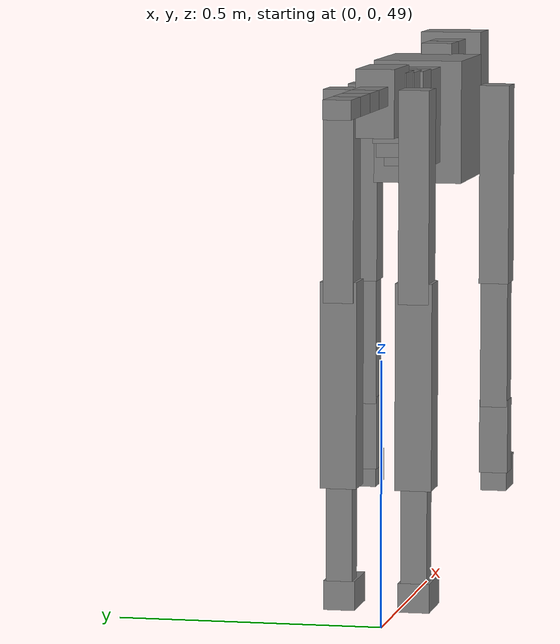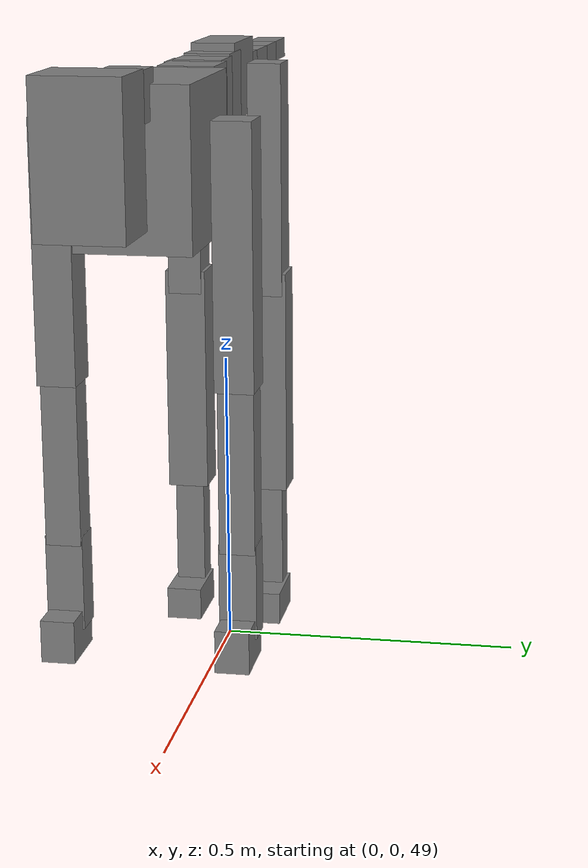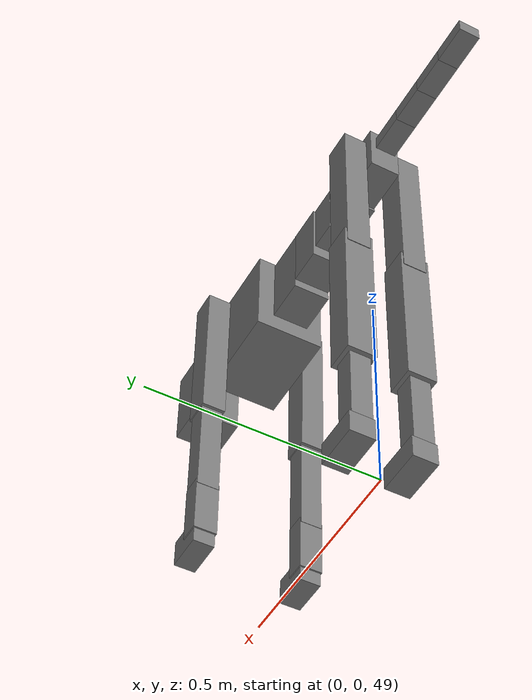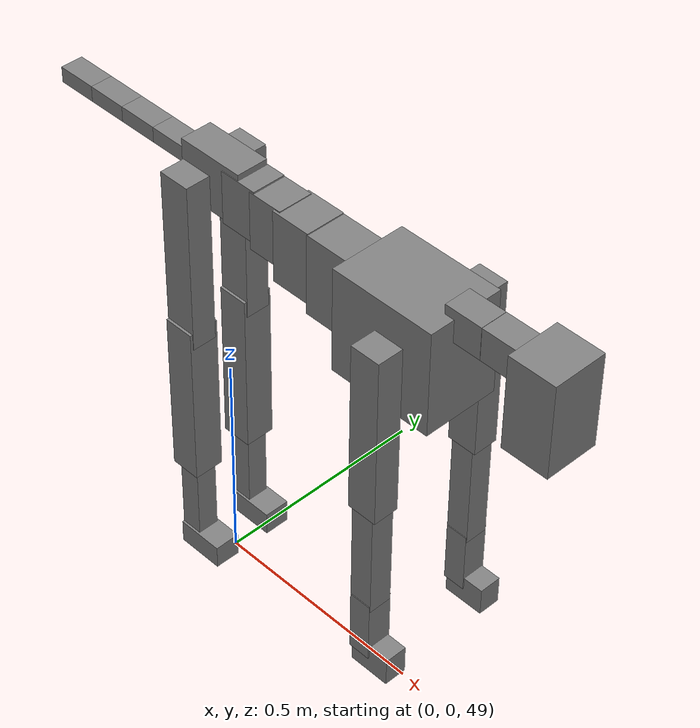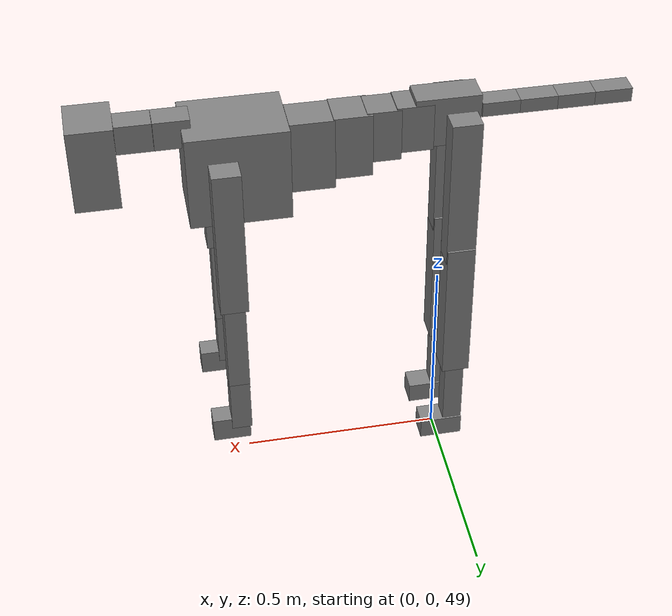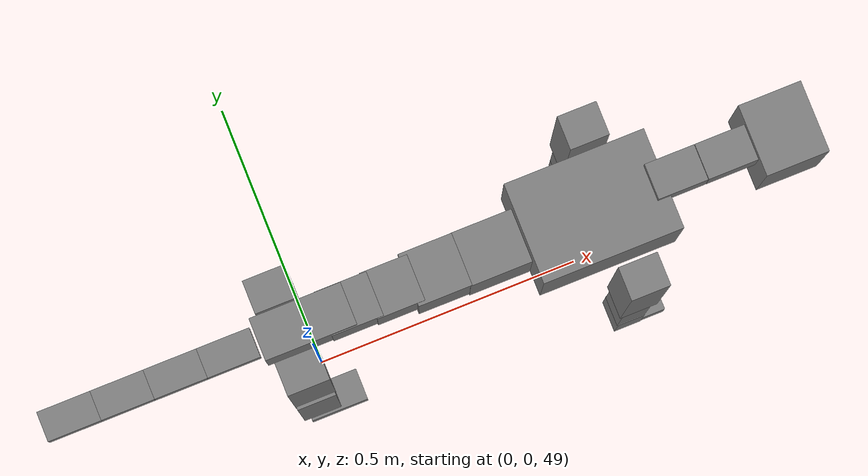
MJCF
<mujoco model="dog">

    <default>
        <joint armature="0.02" stiffness="1" damping="0.2" limited="true"/>
        <geom condim="3" friction="1 0.05 0.05" margin="0.01"/>
        <motor ctrllimited="true" ctrlrange="-1.0 1.0" forcelimited="true" gear="50"/>
    </default>

    <compiler inertiafromgeom="true" angle="radian"/>

    <option timestep="0.016" iterations="50" tolerance="1e-10" solver="Newton" jacobian="dense" cone="pyramidal"/>

    <size nconmax="20000" njmax="60000" nstack="5000000"/>
    <visual>
        <map force="0.1" zfar="30"/>
        <rgba haze="0.15 0.25 0.35 1"/>
        <quality shadowsize="2048"/>
        <global offwidth="800" offheight="800"/>
    </visual>

    <asset>
        <texture type="skybox" builtin="gradient" rgb1="0.3 0.5 0.7" rgb2="0 0 0" width="512" height="512"/>
        <texture name="texplane" type="2d" builtin="checker" rgb1=".2 .3 .4" rgb2=".1 0.15 0.2" width="512" height="512"
                 mark="cross" markrgb=".8 .8 .8"/>
        <texture name="texgeom" type="cube" builtin="flat" mark="cross" width="127" height="1278" rgb1="0.8 0.6 0.4"
                 rgb2="0.8 0.6 0.4" markrgb="1 1 1" random="0.01"/>

        <material name="matplane" reflectance="0.3" texture="texplane" texrepeat="1 1" texuniform="true"/>
        <material name="matgeom" texture="texgeom" texuniform="true" rgba="0.8 0.6 .4 1"/>
    </asset>

    <worldbody>
        <geom name="floor" pos="0 0 0" size="0 0 .25" type="plane" material="matplane" condim="3"/>

        <light directional="false" diffuse=".2 .2 .2" specular="0 0 0" pos="0 0 5" dir="0 0 -1" castshadow="false"/>
        <light mode="targetbodycom" target="torso" directional="false" diffuse=".8 .8 .8" specular="0.3 0.3 0.3"
               pos="0 0 4.0" dir="0 0 -1"/>

        <body name="root" pos="0 0 50">
            <freejoint name="root_1"/>
            <geom type="box" pos="0 0 -0.02" size="0.0774  0.0358  0.063" density="2030"/>

            <body name="spine1" pos="0.054 0 0">
                <joint name="spine1_y" axis="0 1 0" range="0 0.7" limited="true"/>
                <geom type="box" pos="0.02375 0 -0.03" size="0.04375  0.0375  0.05985" density="2030"/>

                <body name="spine2" pos="0.0612 0 0">
                    <joint name="spine2_y" axis="0 1 0" range="-0.15 0.15" limited="true"/>
                    <geom type="box" pos="0.03555  0  -0.04" size="0.04055  0.039  0.06615" density="2030"/>

                    <body name="spine3" pos="0.0730 0 0">
                        <joint name="spine3_y" axis="0 1 0" range="-0.15 0.15" limited="true"/>
                        <geom type="box" pos="0.03555  0  -0.057" size="0.04555  0.0445  0.081" density="2030"/>

                        <body name="spine4" pos="0.0780 0 0">
                            <joint name="spine4_y" axis="0 1 0" range="-0.15 0.15" limited="true"/>
                            <geom type="box" pos="0.05265  0  -0.07" size="0.05265  0.045  0.09135" density="2030"/>

                            <body name="torso" pos="0.1082 0 0">
                                <joint name="torso_y" axis="0 1 0" range="-0.15 0.15" limited="true"/>
                                <geom type="box" pos="0.11925  0  -0.085" size="0.11925  0.085  0.11745"
                                      density="2030"/>

                                <body name="neck1" pos="0.2160  0   0.0180">
                                    <joint name="neck1_y" axis="0 1 0" range="-1.2  -1" limited="true"/>
                                    <geom type="box" pos="0.0423  0  0" size="0.0423  0.03  0.036" density="2325"/>

                                    <body name="neck2" pos="0.0853  0  0">
                                        <joint name="neck2_y" axis="0 1 0" range="0.1  0" limited="true"/>
                                        <geom type="box" pos="0.0423  0  0" size="0.0423  0.03  0.036" density="2325"/>

                                        <body name="head" pos="0.0853  0  0">
                                            <joint name="head_y" axis="0 1 0" range="-0.3  -0.2" limited="true"/>
                                            <geom type="box" pos="0.0531  0  -0.055" size="0.0531  0.06  0.1044"
                                                  density="4030"/>

                                        </body>
                                    </body>
                                </body>

                                <body name="front_shoulder" pos="0.156  0   -0.0480">
                                    <joint name="front_shoulder_y" axis="0 1 0" range="-1 1.5" limited="true"/>
                                    <geom type="box" pos="0 0.13 -0.1664" size="0.0337  0.0288  0.1930" density="1158"/>
                                    <geom type="box" pos="0 -0.13 -0.1664" size="0.0337  0.0288  0.1930"
                                          density="1158"/>

                                    <body name="front_elbow" pos="0  0  -0.3327">
                                        <joint name="front_elbow_y" axis="0 1 0" range="-2 0" limited="true"/>
                                        <geom type="box" pos="0 0.13 -0.1351" size="0.0258  0.0264  0.1351"
                                              density="1081"/>
                                        <geom type="box" pos="0 -0.13 -0.1351" size="0.0258  0.0264  0.1351"
                                              density="1081"/>

                                        <body name="front_wrist" pos="0  0  -0.2702">
                                            <joint name="front_wrist_y" axis="0 1 0" range="-0.2 0" limited="true"/>
                                            <geom type="box" pos="0 0.13 -0.0583" size="0.0250  0.0278  0.0715"
                                                  density="1664"/>
                                            <geom type="box" pos="0 -0.13 -0.0583" size="0.0250  0.0278  0.0715"
                                                  density="1664"/>

                                            <body name="front_finger_end" pos="0  0  -0.1166">
                                                <joint name="front_finger_y" axis="0 1 0" range="-0.4 1"
                                                       limited="true"/>
                                                <geom type="box" pos="0.0253  0.13  -0.0171"
                                                      size="0.0464  0.0253  0.0321" density="1515"/>
                                                <geom type="box" pos="0.0253  -0.13  -0.0171"
                                                      size="0.0464  0.0253  0.0321" density="1515"/>

                                            </body>

                                        </body>
                                    </body>
                                </body>

                            </body>
                        </body>
                    </body>
                </body>
            </body>

            <body name="back_hip" pos="-0.03 0 -0.018">
                <joint name="back_hip_y" axis="0 1 0" range="-1.5 0.3" limited="true"/>
                <geom type="box" pos="0 0.07 -0.1731" size="0.0360  0.0282  0.1959" density="1154"/>
                <geom type="box" pos="0 -0.07 -0.1731" size="0.0360  0.0282  0.1959" density="1154"/>

                <body name="back_knee" pos="0  0  -0.3462">
                    <joint name="back_knee_y" axis="0 1 0" range="0 2.8" limited="true"/>
                    <geom type="box" pos="0 0.07 -0.1756" size="0.0346  0.0341  0.1912" density="1227"/>
                    <geom type="box" pos="0 -0.07 -0.1756" size="0.0346  0.0341  0.1912" density="1227"/>

                    <body name="back_ankle" pos="0  0  -0.3513">
                        <joint name="back_ankle_y" axis="0 1 0" range="-2.2 0" limited="true"/>
                        <geom type="box" pos="0 0.07 -0.1023" size="0.0244  0.0244  0.1135" density="1284"/>
                        <geom type="box" pos="0 -0.07 -0.1023" size="0.0244  0.0244  0.1135" density="1284"/>

                        <body name="back_toe_end" pos="0  0  -0.2046">
                            <joint name="back_toe_y" axis="0 1 0" range="-0.4 1" limited="true"/>
                            <geom type="box" pos="0.0294  0.07  -0.0122" size="0.0539  0.0294  0.0272" density="1515"/>
                            <geom type="box" pos="0.0294  -0.07  -0.0122" size="0.0539  0.0294  0.0272" density="1515"/>

                        </body>
                    </body>
                </body>
            </body>

            <body name="tail1" pos="-0.074 0 -0.006">
                <joint name="tail1_y" axis="0 1 0" range="-0.2 0.2" limited="true"/>
                <geom type="box" pos="-0.0536  0  0" size="0.045  0.025  0.0175" density="1587"/>

                <body name="tail2" pos="-0.09 0 0">
                    <joint name="tail2_y" axis="0 1 0" range="-0.2 0.2" limited="true"/>
                    <geom type="box" pos="-0.0536  0  0" size="0.045  0.025  0.0175" density="1587"/>

                    <body name="tail3" pos="-0.09 0 0">
                        <joint name="tail3_y" axis="0 1 0" range="-0.2 0.2" limited="true"/>
                        <geom type="box" pos="-0.0536  0  0" size="0.045  0.025  0.0175" density="1587"/>

                        <body name="tail4" pos="-0.09 0 0">
                            <joint name="tail4_y" axis="0 1 0" range="-0.2 0.2" limited="true"/>
                            <geom type="box" pos="-0.0536  0  0" size="0.045  0.025  0.0175" density="1587"/>

                        </body>
                    </body>
                </body>
            </body>
        </body>
    </worldbody>

    <actuator>
        <motor joint="spine1_y" forcerange="-150 150     "/>
        <motor joint="spine2_y" forcerange="-150 150     "/>
        <motor joint="spine3_y" forcerange="-150 150     "/>
        <motor joint="spine4_y" forcerange="-150 150     "/>
        <motor joint="torso_y" forcerange="-150 150     "/>
        <motor joint="neck1_y" forcerange="-100 100       "/>
        <motor joint="neck2_y" forcerange="-100 100       "/>
        <motor joint="head_y" forcerange="-150 150       "/>
        <motor joint="front_shoulder_y" forcerange="-144.21 147.83"/>
        <motor joint="front_elbow_y" forcerange="-113.01 178.66"/>
        <motor joint="front_wrist_y" forcerange="-96.11 125.91"/>
        <motor joint="front_finger_y" forcerange="-26.78 68.29"/>
        <motor joint="back_hip_y" forcerange="-256.09 320.28"/>
        <motor joint="back_knee_y" forcerange="-311.04 384.99"/>
        <motor joint="back_angle_y" forcerange="-140.51 149.22"/>
        <motor joint="back_toe_y" forcerange="-42.90 112.41"/>
        <motor joint="tail1_y" forcerange="-50 50     "/>
        <motor joint="tail2_y" forcerange="-50 50     "/>
        <motor joint="tail3_y" forcerange="-50 50     "/>
        <motor joint="tail4_y" forcerange="-50 50     "/>
    </actuator>
</mujoco>
